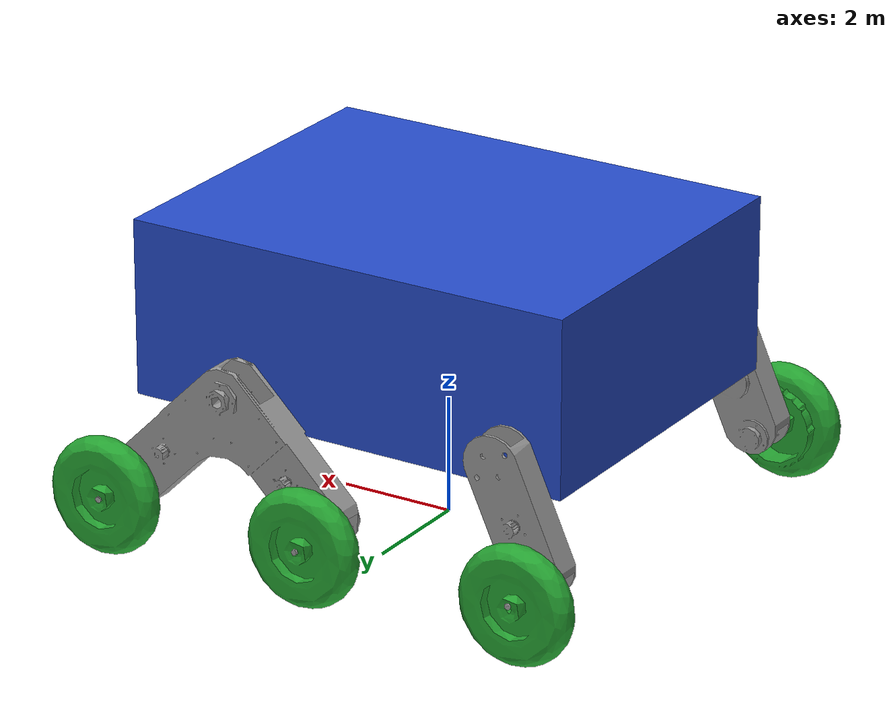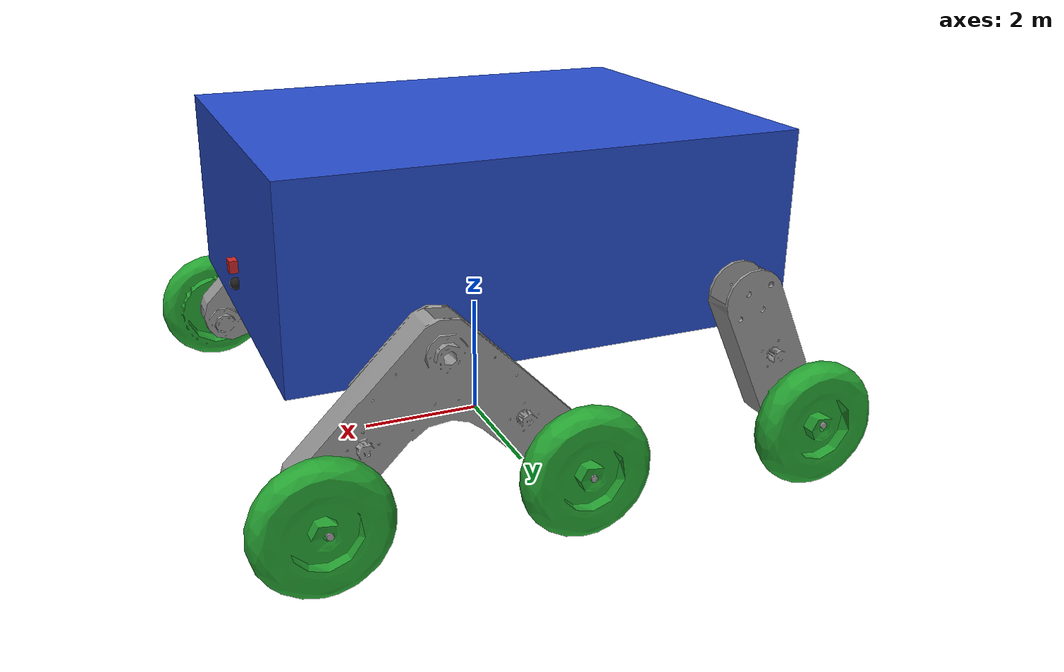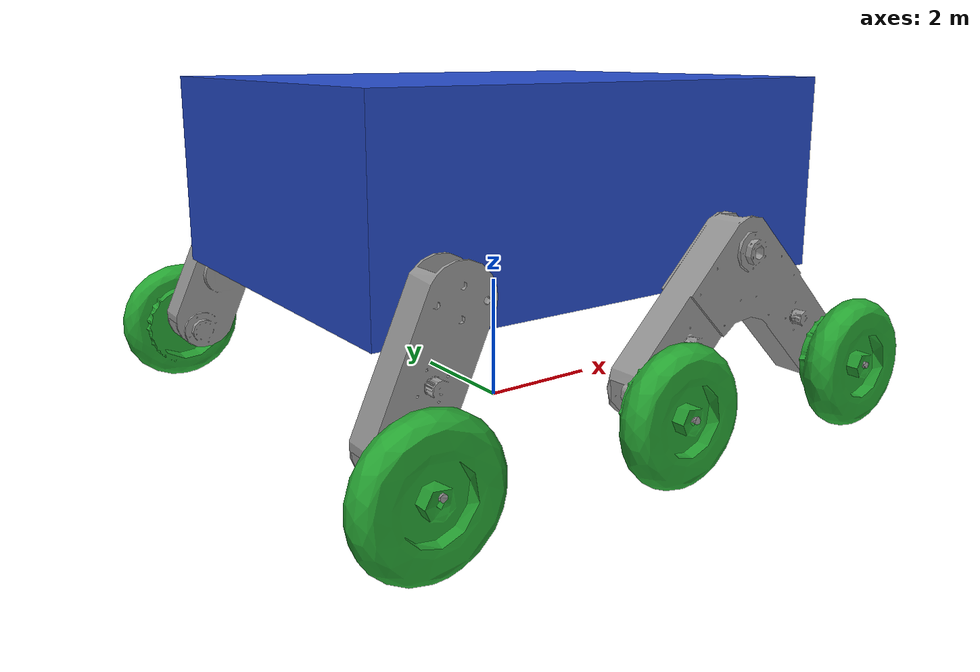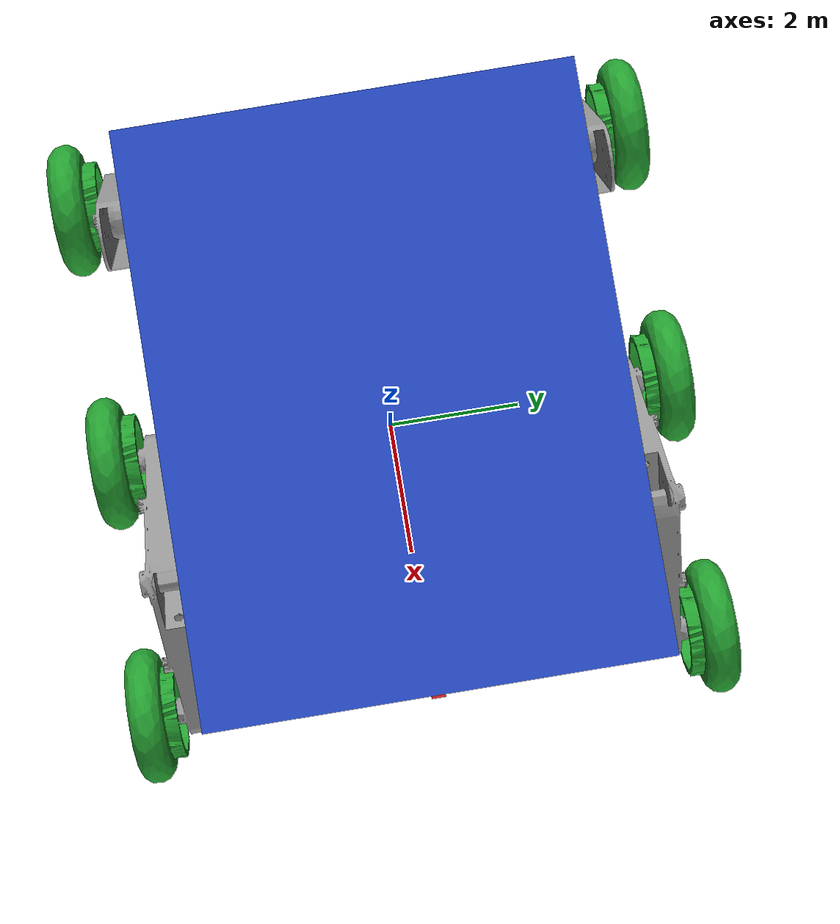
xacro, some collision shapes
<?xml version="1.0"?>
<robot name="delivery_fellow" xmlns:xacro="http://www.ros.org/wiki/xacro">

  <xacro:include filename="$(find delivery_fellow_description)/urdf/delivery_fellow.gazebo" />

  <!-- robot description -->
  <link name='link_body'>
    <inertial>
      <origin xyz="0 0 5.3" rpy="0 0 0"/>
      <mass value="40"/>
      <inertia ixx="340.884" ixy="0" ixz="0" iyy="254.167" iyz="0" izz="168.384"/>
    </inertial>
    <visual>
      <origin xyz="0 0 2.3" rpy="0 -0 0"/>
      <geometry>
        <mesh filename="$(find delivery_fellow_description)/dae/body.dae" />
      </geometry>
    </visual>
    <collision>
      <origin xyz="0 0 3.8" rpy="0 -0 0"/>
      <geometry>
        <box size="7.93 6.18588 3"/>
      </geometry>
    </collision>
  </link>
  <link name='link_body_2'>
    <collision>
      <origin xyz="0 0 8.8" rpy="0 -0 0" />
      <geometry>
        <box size="3.5 6.18588 8"/>
      </geometry>
    </collision>
  </link>
  <joint name='joint_body_self_2' type='fixed'>
    <parent link="link_body"/>
    <child link="link_body_2"/>
  </joint>

  <link name='link_leg_RF'>
    <inertial>
      <origin xyz="0 0 -1.3" rpy="0 0 1.5708"/>
      <mass value="4"/>
      <inertia ixx="4.41667" ixy="0" ixz="0" iyy="4.15083" iyz="0" izz="0.400833"/>
    </inertial>
    <visual>
      <origin xyz="0 0 -2.3" rpy="0 0 1.5708"/>
      <geometry>
        <mesh filename="$(find delivery_fellow_description)/dae/bogie.dae" />
      </geometry>
    </visual>
    <collision>
      <origin xyz="-0.8 0 -0.9" rpy="0 0.8 0"/>
      <geometry>
        <box size="1.2 0.4 3.2"/>
      </geometry>
    </collision>
  </link>
  <link name='link_leg_RF_2'>
    <collision>
      <origin xyz="0.8 0 -0.9" rpy="0 -0.8 0"/>
      <geometry>
        <box size="1.2 0.4 3.2"/>
      </geometry>
    </collision>
  </link>
  <joint name='joint_leg_RF_self_2' type='fixed'>
    <parent link="link_leg_RF"/>
    <child link="link_leg_RF_2"/>
  </joint>

  <link name='link_leg_LF'>
    <inertial>
      <origin xyz="0 0 -1.3" rpy="0 0 1.5708"/>
      <mass value="4"/>
      <inertia ixx="4.41667" ixy="0" ixz="0" iyy="4.15083" iyz="0" izz="0.400833"/>
    </inertial>
    <visual>
      <origin xyz="0 0 -2.3" rpy="0 0 1.5708"/>
      <geometry>
        <mesh filename="$(find delivery_fellow_description)/dae/bogie.dae" />
      </geometry>
    </visual>
    <collision>
      <origin xyz="-0.8 0 -0.9" rpy="0 0.8 0"/>
      <geometry>
        <box size="1.2 0.4 3.2"/>
      </geometry>
    </collision>
  </link>
  <link name='link_leg_LF_2'>
    <collision>
      <origin xyz="0.8 0 -0.9" rpy="0 -0.8 0"/>
      <geometry>
        <box size="1.2 0.4 3.2"/>
      </geometry>
    </collision>
  </link>
  <joint name='joint_leg_LF_self_2' type='fixed'>
    <parent link="link_leg_LF"/>
    <child link="link_leg_LF_2"/>
  </joint>

  <link name='link_leg_RB'>
    <inertial>
      <origin xyz="0.32 0 -0.8" rpy="0 -0.423827 0"/>
      <mass value="2"/>
      <inertia ixx="1.36626" ixy="0" ixz="0" iyy="1.47044" iyz="0" izz="0.224186"/>
    </inertial>
    <visual>
      <origin xyz="0.946 0 -2.15" rpy="0 -0.423827 0"/>
      <geometry>
        <mesh filename="$(find delivery_fellow_description)/dae/rocker.dae"/>
      </geometry>
    </visual>
    <collision>
      <origin xyz="0.32 0 -0.8" rpy="0 -0.423827 0"/>
      <geometry>
        <box size="1 0.6 2.8"/>
      </geometry>
    </collision>
  </link>
  <link name='link_leg_LB'>
    <inertial>
      <origin xyz="-0.32 0 -0.8" rpy="0 0.423827 0"/>
      <mass value="2"/>
      <inertia ixx="1.36626" ixy="0" ixz="0" iyy="1.47044" iyz="0" izz="0.224186"/>
    </inertial>
    <visual>
      <origin xyz="-0.946 0 -2.15" rpy="0 0.423827 0"/>
      <geometry>
        <mesh filename="$(find delivery_fellow_description)/dae/rocker.dae"/>
      </geometry>
    </visual>
    <collision>
      <origin xyz="-0.32 0 -0.8" rpy="0 0.423827 0"/>
      <geometry>
        <box size="1 0.6 2.8"/>
      </geometry>
    </collision>
  </link>

  <link name='link_wheel_R1'>
    <inertial>
      <origin xyz="0 -0.4 0" rpy="0 0 0"/>
      <mass value="1"/>
      <inertia ixx="0.166667" ixy="0" ixz="0" iyy="0.166667" iyz="0" izz="0.166667"/>
    </inertial>
    <visual>
      <origin xyz="0 -0.4 -1" rpy="0 0 1.5708" />
      <geometry>
        <mesh filename="$(find delivery_fellow_description)/dae/wheel.dae" />
      </geometry>
    </visual>
    <collision>
      <origin xyz="0 -0.4 0" rpy="0 1.5708 1.5708" />
      <geometry>
        <cylinder radius="1" length="0.7"/>
      </geometry>
    </collision>
  </link>
  <link name='link_wheel_R2'>
    <inertial>
      <origin xyz="0 -0.4 0" rpy="0 0 0"/>
      <mass value="1"/>
      <inertia ixx="0.166667" ixy="0" ixz="0" iyy="0.166667" iyz="0" izz="0.166667"/>
    </inertial>
    <visual>
      <origin xyz="0 -0.4 -1" rpy="0 0 1.5708" />
      <geometry>
        <mesh filename="$(find delivery_fellow_description)/dae/wheel.dae" />
      </geometry>
    </visual>
    <collision>
      <origin xyz="0 -0.4 0" rpy="0 1.5708 1.5708" />
      <geometry>
        <cylinder radius="1" length="0.7"/>
      </geometry>
    </collision>
  </link>
  <link name='link_wheel_R3'>
    <inertial>
      <origin xyz="0 -0.4 0" rpy="0 0 0"/>
      <mass value="1"/>
      <inertia ixx="0.166667" ixy="0" ixz="0" iyy="0.166667" iyz="0" izz="0.166667"/>
    </inertial>
    <visual>
      <origin xyz="0 -0.4 -1" rpy="0 0 1.5708" />
      <geometry>
        <mesh filename="$(find delivery_fellow_description)/dae/wheel.dae" />
      </geometry>
    </visual>
    <collision>
      <origin xyz="0 -0.4 0" rpy="0 1.5708 1.5708" />
      <geometry>
        <cylinder radius="1" length="0.7"/>
      </geometry>
    </collision>
  </link>

  <link name='link_wheel_L1'>
    <inertial>
      <origin xyz="0 -0.4 0" rpy="0 0 0"/>
      <mass value="1"/>
      <inertia ixx="0.166667" ixy="0" ixz="0" iyy="0.166667" iyz="0" izz="0.166667"/>
    </inertial>
    <visual>
      <origin xyz="0 -0.4 -1" rpy="0 0 1.5708" />
      <geometry>
        <mesh filename="$(find delivery_fellow_description)/dae/wheel.dae" />
      </geometry>
    </visual>
    <collision>
      <origin xyz="0 -0.4 0" rpy="0 1.5708 1.5708" />
      <geometry>
        <cylinder radius="1" length="0.7"/>
      </geometry>
    </collision>
  </link>
  <link name='link_wheel_L2'>
    <inertial>
      <origin xyz="0 -0.4 0" rpy="0 0 0"/>
      <mass value="1"/>
      <inertia ixx="0.166667" ixy="0" ixz="0" iyy="0.166667" iyz="0" izz="0.166667"/>
    </inertial>
    <visual>
      <origin xyz="0 -0.4 -1" rpy="0 0 1.5708" />
      <geometry>
        <mesh filename="$(find delivery_fellow_description)/dae/wheel.dae" />
      </geometry>
    </visual>
    <collision>
      <origin xyz="0 -0.4 0" rpy="0 1.5708 1.5708" />
      <geometry>
        <cylinder radius="1" length="0.7"/>
      </geometry>
    </collision>
  </link>
  <link name='link_wheel_L3'>
    <inertial>
      <origin xyz="0 -0.4 0" rpy="0 0 0"/>
      <mass value="1"/>
      <inertia ixx="0.166667" ixy="0" ixz="0" iyy="0.166667" iyz="0" izz="0.166667"/>
    </inertial>
    <visual>
      <origin xyz="0 -0.4 -1" rpy="0 0 1.5708" />
      <geometry>
        <mesh filename="$(find delivery_fellow_description)/dae/wheel.dae" />
      </geometry>
    </visual>
    <collision>
      <origin xyz="0 -0.4 0" rpy="0 1.5708 1.5708" />
      <geometry>
        <cylinder radius="1" length="0.7"/>
      </geometry>
    </collision>
  </link>

  <link name="link_sensor_F">
    <collision>
      <origin xyz="0 0 0" rpy="0 0 0"/>
      <geometry>
        <sphere radius="0.1"/>
      </geometry>
    </collision>
    <visual>
      <origin xyz="0 0 0" rpy="0 0 0"/>
      <geometry>
        <sphere radius="0.1"/>
      </geometry>

    </visual>
    <inertial>
      <mass value="1e-5" />
      <origin xyz="0 0 0" rpy="0 0 0"/>
      <inertia ixx="1e-6" ixy="0" ixz="0" iyy="1e-6" iyz="0" izz="1e-6" />
    </inertial>
  </link>
  <joint name="joint_sensor_F" type="fixed">
    <axis xyz="0 1 0" />
    <origin xyz="4 0 2.9" rpy="0 0 0"/>
    <parent link="link_body"/>
    <child link="link_sensor_F"/>
  </joint>

  <link name="link_camera_F">
    <collision>
      <origin xyz="0 0 0" rpy="0 0 0"/>
      <geometry>
        <box size="0.2 0.2 0.2"/>
      </geometry>
    </collision>

    <visual>
      <origin xyz="0 0 0" rpy="0 0 0"/>
      <geometry>
        <box size="0.2 0.2 0.2"/>
      </geometry>
      <material name="red"/>
    </visual>

    <inertial>
      <mass value="1e-5" />
      <origin xyz="0 0 0" rpy="0 0 0"/>
      <inertia ixx="1e-6" ixy="0" ixz="0" iyy="1e-6" iyz="0" izz="1e-6" />
    </inertial>
  </link>
  <joint name="joint_camera_F" type="fixed">
    <axis xyz="0 1 0" />
    <origin xyz="4 0 3.2" rpy="0 0 0"/>
    <parent link="link_body"/>
    <child link="link_camera_F"/>
  </joint>

  <joint name='joint_body_leg_RF' type='revolute'>
    <origin xyz="1.9 -3.4 2.9" rpy="0 -0 0"/>
    <parent link="link_body"/>
    <child link="link_leg_RF"/>
    <axis xyz="0 -1 0"/>
    <limit effort="2e250" velocity="2e250" lower="-1.5708" upper="1.5708" />
  </joint>
  <joint name='joint_body_leg_LF' type='revolute'>
    <origin xyz="1.9 3.4 2.9" rpy="0 0 3.14159"/>
    <parent link="link_body"/>
    <child link="link_leg_LF"/>
    <axis xyz="0 -1 0"/>
    <limit effort="2e250" velocity="2e250" lower="-1.5708" upper="1.5708" />
  </joint>

  <joint name='joint_body_leg_RB' type='fixed'>
    <origin xyz="-3.08 -3.4 2.9" rpy="0 0 3.14159"/>
    <parent link="link_body"/>
    <child link="link_leg_RB"/>
  </joint>
  <joint name='joint_body_leg_LB' type='fixed'>
    <origin xyz="-3.08 3.4 2.9" rpy="0 0 0"/>
    <parent link="link_body"/>
    <child link="link_leg_LB"/>
  </joint>

  <joint name='joint_leg_wheel_R1' type='revolute'>
    <origin xyz="1.9 -0.4 -1.9" rpy="0 0 0"/>
    <parent link="link_leg_RF"/>
    <child link="link_wheel_R1"/>
    <axis xyz="0 1 0"/>
    <limit effort="2e250" velocity="2e250" lower="-2e251" upper="2e251" />
  </joint>
  <joint name='joint_leg_wheel_R2' type='revolute'>
    <origin xyz="-1.9 -0.4 -1.9" rpy="0 0 0"/>
    <parent link="link_leg_RF"/>
    <child link="link_wheel_R2"/>
    <axis xyz="0 1 0"/>
    <limit effort="2e250" velocity="2e250" lower="-2e251" upper="2e251" />
  </joint>
  <joint name='joint_leg_wheel_R3' type='revolute'>
    <origin xyz="0.82 0.4 -1.9" rpy="0 0 3.14159"/>
    <parent link="link_leg_RB"/>
    <child link="link_wheel_R3"/>
    <axis xyz="0 1 0"/>
    <limit effort="2e250" velocity="2e250" lower="-2e251" upper="2e251" />
  </joint>
  <joint name='joint_leg_wheel_L1' type='revolute'>
    <origin xyz="1.9 -0.4 -1.9" rpy="0 0 0"/>
    <parent link="link_leg_LF"/>
    <child link="link_wheel_L1"/>
    <axis xyz="0 -1 0"/>
    <limit effort="2e250" velocity="2e250" lower="-2e251" upper="2e251" />
  </joint>
  <joint name='joint_leg_wheel_L2' type='revolute'>
    <origin xyz="-1.9 -0.4 -1.9" rpy="0 0 0"/>
    <parent link="link_leg_LF"/>
    <child link="link_wheel_L2"/>
    <axis xyz="0 -1 0"/>
    <limit effort="2e250" velocity="2e250" lower="-2e251" upper="2e251" />
  </joint>
  <joint name='joint_leg_wheel_L3' type='revolute'>
    <origin xyz="-0.82 0.4 -1.9" rpy="0 0 3.14159"/>
    <parent link="link_leg_LB"/>
    <child link="link_wheel_L3"/>
    <axis xyz="0 -1 0"/>
    <limit effort="2e250" velocity="2e250" lower="-2e251" upper="2e251" />
  </joint>

  <transmission name="trans_wheel_R1">
    <type>transmission_interface/SimpleTransmission</type>
    <joint name="joint_leg_wheel_R1">
        <hardwareInterface>EffortJointInterface</hardwareInterface>
    </joint>
    <actuator name="motor_wheel_R1">
      <hardwareInterface>EffortJointInterface</hardwareInterface>
      <mechanicalReduction>4</mechanicalReduction>
    </actuator>
  </transmission>
  <transmission name="trans_wheel_R2">
    <type>transmission_interface/SimpleTransmission</type>
    <joint name="joint_leg_wheel_R2">
        <hardwareInterface>EffortJointInterface</hardwareInterface>
    </joint>
    <actuator name="motor_wheel_R2">
      <hardwareInterface>EffortJointInterface</hardwareInterface>
      <mechanicalReduction>4</mechanicalReduction>
    </actuator>
  </transmission>
  <transmission name="trans_wheel_R3">
    <type>transmission_interface/SimpleTransmission</type>
    <joint name="joint_leg_wheel_R3">
        <hardwareInterface>EffortJointInterface</hardwareInterface>
    </joint>
    <actuator name="motor_wheel_R3">
      <hardwareInterface>EffortJointInterface</hardwareInterface>
      <mechanicalReduction>4</mechanicalReduction>
    </actuator>
  </transmission>
  <transmission name="trans_wheel_L1">
    <type>transmission_interface/SimpleTransmission</type>
    <joint name="joint_leg_wheel_L1">
        <hardwareInterface>EffortJointInterface</hardwareInterface>
    </joint>
    <actuator name="motor_wheel_L1">
      <hardwareInterface>EffortJointInterface</hardwareInterface>
      <mechanicalReduction>4</mechanicalReduction>
    </actuator>
  </transmission>
  <transmission name="trans_wheel_L2">
    <type>transmission_interface/SimpleTransmission</type>
    <joint name="joint_leg_wheel_L2">
        <hardwareInterface>EffortJointInterface</hardwareInterface>
    </joint>
    <actuator name="motor_wheel_L2">
      <hardwareInterface>EffortJointInterface</hardwareInterface>
      <mechanicalReduction>4</mechanicalReduction>
    </actuator>
  </transmission>
  <transmission name="trans_wheel_L3">
    <type>transmission_interface/SimpleTransmission</type>
    <joint name="joint_leg_wheel_L3">
        <hardwareInterface>EffortJointInterface</hardwareInterface>
    </joint>
    <actuator name="motor_wheel_L3">
      <hardwareInterface>EffortJointInterface</hardwareInterface>
      <mechanicalReduction>4</mechanicalReduction>
    </actuator>
  </transmission>

</robot>
